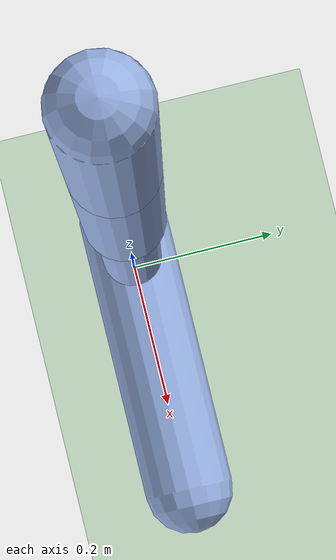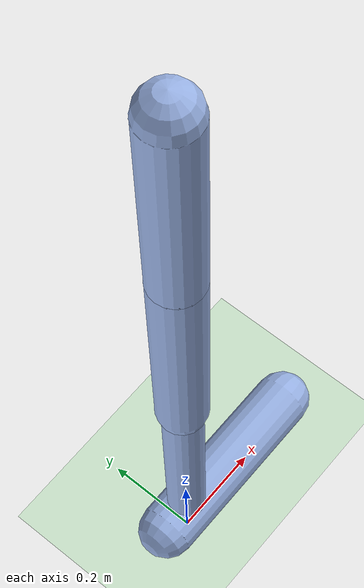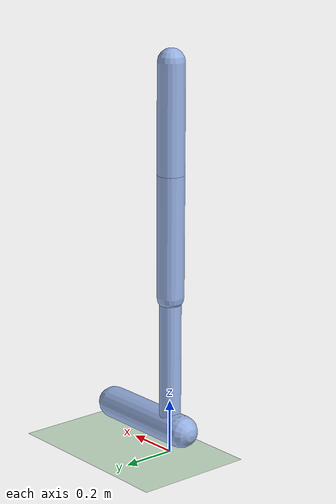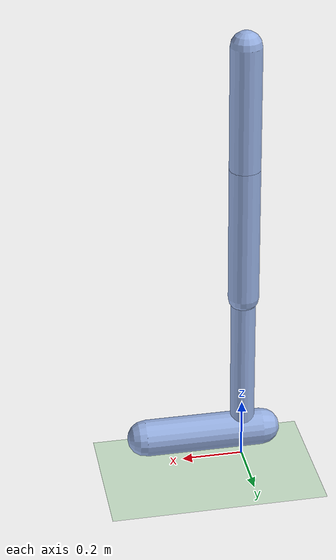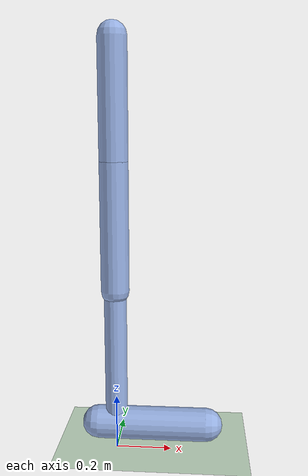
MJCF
<mujoco model="planar_hopper">
  <compiler angle="degree" inertiafromgeom="true"/>
  <option timestep="0.004" integrator="Euler" iterations="10" solver="PGS" jacobian="dense" cone="pyramidal"/>
  <default>
    <joint armature="1" damping="1" limited="true"/>
    <geom conaffinity="1" condim="3" contype="1" friction="0.9 0.1 0.1" rgba="0.6 0.7 0.9 1" solimp="0.9 0.95 0.001" solref="0.02 1"/>
    <motor ctrllimited="true" ctrlrange="-1 1"/>
  </default>
  <worldbody>
    <geom name="floor" type="plane" pos="0 0 0" size="100 5 0.1" conaffinity="1" condim="3" rgba="0.8 0.9 0.8 1"/>
    <body name="torso" pos="0 0 1.25">
      <camera name="track" mode="trackcom" pos="0 -3 0.5" xyaxes="1 0 0 0 0 1"/>
      <joint name="rootx" type="slide" axis="1 0 0" limited="false" armature="0" damping="0"/>
      <joint name="rootz" type="slide" axis="0 0 1" limited="false" armature="0" damping="0"/>
      <joint name="rooty" type="hinge" axis="0 1 0" limited="false" armature="0" damping="0"/>
      <geom name="torso_geom" type="capsule" fromto="0 0 -0.2 0 0 0.2" size="0.05"/>
      <body name="thigh" pos="0 0 -0.2">
        <joint name="thigh_joint" type="hinge" axis="0 -1 0" range="-150 0"/>
        <geom name="thigh_geom" type="capsule" fromto="0 0 0 0 0 -0.45" size="0.05"/>
        <body name="leg" pos="0 0 -0.45">
          <joint name="leg_joint" type="hinge" axis="0 -1 0" range="-150 0"/>
          <geom name="leg_geom" type="capsule" fromto="0 0 0 0 0 -0.5" size="0.04"/>
          <body name="foot" pos="0.065 0 -0.5">
            <joint name="foot_joint" type="hinge" axis="0 -1 0" range="-45 45"/>
            <geom name="foot_geom" type="capsule" fromto="-0.13 0 0 0.26 0 0" size="0.06"/>
          </body>
        </body>
      </body>
    </body>
  </worldbody>
  <actuator>
    <motor joint="thigh_joint" gear="200"/>
    <motor joint="leg_joint" gear="200"/>
    <motor joint="foot_joint" gear="200"/>
  </actuator>
</mujoco>
